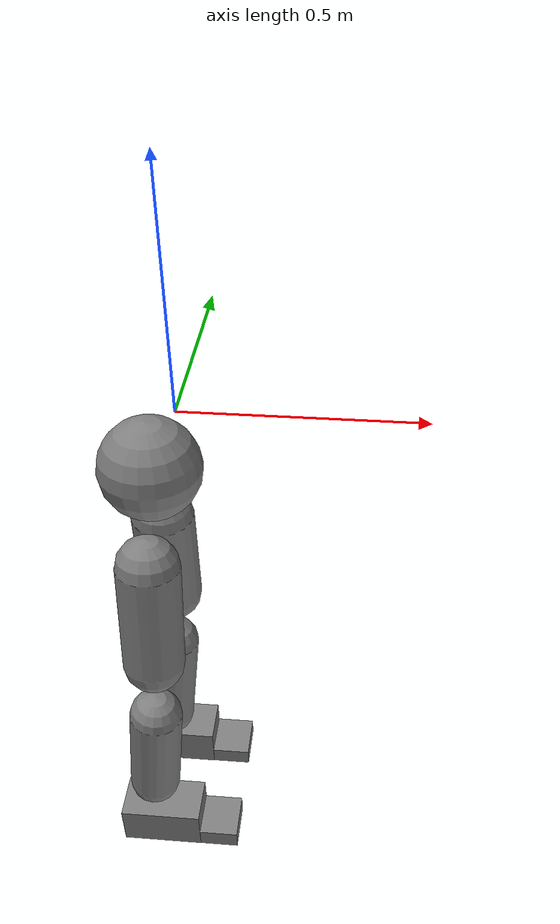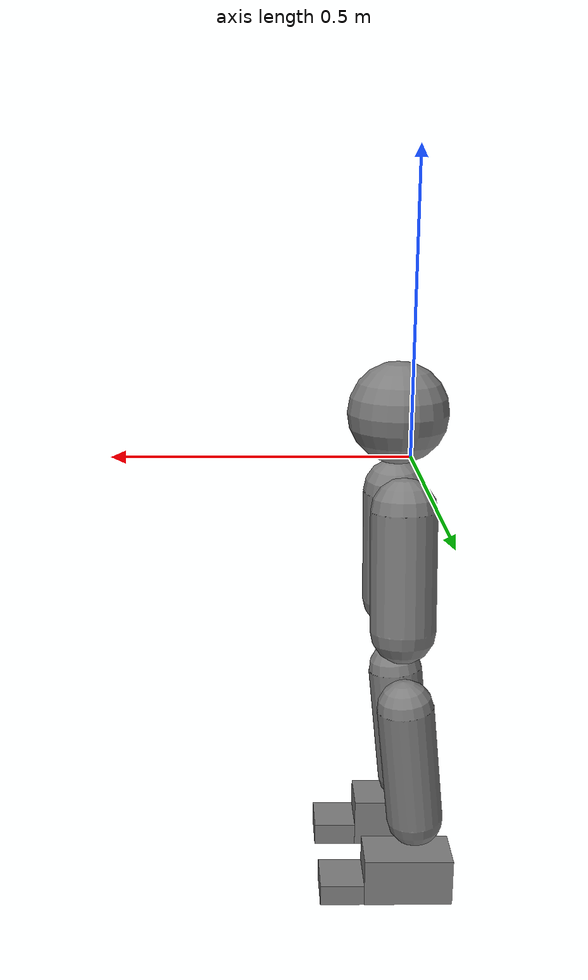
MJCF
<mujoco model="humanoid">
  <compiler coordinate="local"/>
  <statistic extent="2" center="0 0 1"/>
  <option timestep="0.00555"/>
  <default>
    <motor ctrlrange="-1 1" ctrllimited="true"/>
    <geom type="capsule" condim="1" friction="1.0 0.05 0.05" solimp=".9 .99 .003" solref=".015 1"/>
    <joint type="hinge" damping="0.1" stiffness="5" armature=".007" limited="true" solimplimit="0 .99 .01"/>
    <site size=".04" group="3"/>
    <default class="force-torque">
      <site type="box" size=".01 .01 .02" rgba="1 0 0 1"/>
    </default>
    <default class="touch">
      <site type="capsule" rgba="0 0 1 .3"/>
    </default>
  </default>
  <asset>
    <texture type="skybox" builtin="gradient" rgb1=".4 .5 .6" rgb2="0 0 0" width="100" height="100"/>
    <texture builtin="flat" height="1278" mark="cross" markrgb="1 1 1" name="texgeom" random="0.01" rgb1="0.8 0.6 0.4" rgb2="0.8 0.6 0.4" type="cube" width="127"/>
    <texture builtin="checker" height="100" name="texplane" rgb1="0 0 0" rgb2="0.8 0.8 0.8" type="2d" width="100"/>
    <material name="MatPlane" reflectance="0.5" shininess="1" specular="1" texrepeat="60 60" texture="texplane"/>
    <material name="geom" texture="texgeom" texuniform="true"/>
  </asset>
  <worldbody>
    <light cutoff="100" diffuse="1 1 1" dir="-0 0 -1.3" directional="true" exponent="1" pos="0 0 1.3" specular=".1 .1 .1"/>
    <body name="Pelvis" pos="-0.0018 -0.2233 0.0282">
      <freejoint name="Pelvis"/>
      <geom type="sphere" contype="1" conaffinity="1" density="4629.6296296296305" size="0.0942" pos="0.0000 0.0000 0.0000"/>
      <body name="L_Hip" pos="-0.0068 0.0695 -0.0914">
        <joint name="L_Hip_x" type="hinge" pos="0 0 0" axis="1 0 0" stiffness="800" damping="80" armature="0.02" range="-180.0000 180.0000"/>
        <joint name="L_Hip_y" type="hinge" pos="0 0 0" axis="0 1 0" stiffness="800" damping="80" armature="0.02" range="-180.0000 180.0000"/>
        <joint name="L_Hip_z" type="hinge" pos="0 0 0" axis="0 0 1" stiffness="800" damping="80" armature="0.02" range="-180.0000 180.0000"/>
        <geom type="capsule" contype="1" conaffinity="1" density="2040.816327" fromto="-0.0009 0.0069 -0.0750 -0.0036 0.0274 -0.3002" size="0.0615"/>
        <body name="L_Knee" pos="-0.0045 0.0343 -0.3752">
          <joint name="L_Knee_x" type="hinge" pos="0 0 0" axis="1 0 0" stiffness="800" damping="80" armature="0.02" range="-180.0000 180.0000"/>
          <joint name="L_Knee_y" type="hinge" pos="0 0 0" axis="0 1 0" stiffness="800" damping="80" armature="0.02" range="-180.0000 180.0000"/>
          <joint name="L_Knee_z" type="hinge" pos="0 0 0" axis="0 0 1" stiffness="800" damping="80" armature="0.02" range="-180.0000 180.0000"/>
          <geom type="capsule" contype="1" conaffinity="1" density="1234.567901" fromto="-0.0087 -0.0027 -0.0796 -0.0350 -0.0109 -0.3184" size="0.0541"/>
          <body name="L_Ankle" pos="-0.0437 -0.0136 -0.398">
            <joint name="L_Ankle_x" type="hinge" pos="0 0 0" axis="1 0 0" stiffness="800" damping="80" armature="0.02" range="-180.0000 180.0000"/>
            <joint name="L_Ankle_y" type="hinge" pos="0 0 0" axis="0 1 0" stiffness="800" damping="80" armature="0.02" range="-180.0000 180.0000"/>
            <joint name="L_Ankle_z" type="hinge" pos="0 0 0" axis="0 0 1" stiffness="800" damping="80" armature="0.02" range="-180.0000 180.0000"/>
            <geom type="box" pos="0.0242 0.0233 -0.0239" size="0.085 0.0483 0.0464" quat="1.0000 0.0000 0.0000 0.0000" density="1000"/>
            <body name="L_Toe" pos="0.1193 0.0264 -0.0558">
              <joint name="L_Toe_x" type="hinge" pos="0 0 0" axis="1 0 0" stiffness="500" damping="50" armature="0.02" range="-180.0000 180.0000"/>
              <joint name="L_Toe_y" type="hinge" pos="0 0 0" axis="0 1 0" stiffness="500" damping="50" armature="0.02" range="-180.0000 180.0000"/>
              <joint name="L_Toe_z" type="hinge" pos="0 0 0" axis="0 0 1" stiffness="500" damping="50" armature="0.02" range="-180.0000 180.0000"/>
              <geom type="box" pos="0.0248 -0.0030 0.0055" size="0.0496 0.0478 0.02" quat="1.0000 0.0000 0.0000 0.0000" density="1000"/>
            </body>
          </body>
        </body>
      </body>
      <body name="R_Hip" pos="-0.0043 -0.0677 -0.0905">
        <joint name="R_Hip_x" type="hinge" pos="0 0 0" axis="1 0 0" stiffness="800" damping="80" armature="0.02" range="-180.0000 180.0000"/>
        <joint name="R_Hip_y" type="hinge" pos="0 0 0" axis="0 1 0" stiffness="800" damping="80" armature="0.02" range="-180.0000 180.0000"/>
        <joint name="R_Hip_z" type="hinge" pos="0 0 0" axis="0 0 1" stiffness="800" damping="80" armature="0.02" range="-180.0000 180.0000"/>
        <geom type="capsule" contype="1" conaffinity="1" density="2040.816327" fromto="-0.0018 -0.0077 -0.0765 -0.0071 -0.0306 -0.3061" size="0.0606"/>
        <body name="R_Knee" pos="-0.0089 -0.0383 -0.3826">
          <joint name="R_Knee_x" type="hinge" pos="0 0 0" axis="1 0 0" stiffness="800" damping="80" armature="0.02" range="-180.0000 180.0000"/>
          <joint name="R_Knee_y" type="hinge" pos="0 0 0" axis="0 1 0" stiffness="800" damping="80" armature="0.02" range="-180.0000 180.0000"/>
          <joint name="R_Knee_z" type="hinge" pos="0 0 0" axis="0 0 1" stiffness="800" damping="80" armature="0.02" range="-180.0000 180.0000"/>
          <geom type="capsule" contype="1" conaffinity="1" density="1234.567901" fromto="-0.0085 0.0032 -0.0797 -0.0338 0.0126 -0.3187" size="0.0541"/>
          <body name="R_Ankle" pos="-0.0423 0.0158 -0.3984">
            <joint name="R_Ankle_x" type="hinge" pos="0 0 0" axis="1 0 0" stiffness="800" damping="80" armature="0.02" range="-180.0000 180.0000"/>
            <joint name="R_Ankle_y" type="hinge" pos="0 0 0" axis="0 1 0" stiffness="800" damping="80" armature="0.02" range="-180.0000 180.0000"/>
            <joint name="R_Ankle_z" type="hinge" pos="0 0 0" axis="0 0 1" stiffness="800" damping="80" armature="0.02" range="-180.0000 180.0000"/>
            <geom type="box" pos="0.0256 -0.0212 -0.0174" size="0.0865 0.0483 0.0478" quat="1.0000 0.0000 0.0000 0.0000" density="1000"/>
            <body name="R_Toe" pos="0.1233 -0.0254 -0.0481">
              <joint name="R_Toe_x" type="hinge" pos="0 0 0" axis="1 0 0" stiffness="500" damping="50" armature="0.02" range="-180.0000 180.0000"/>
              <joint name="R_Toe_y" type="hinge" pos="0 0 0" axis="0 1 0" stiffness="500" damping="50" armature="0.02" range="-180.0000 180.0000"/>
              <joint name="R_Toe_z" type="hinge" pos="0 0 0" axis="0 0 1" stiffness="500" damping="50" armature="0.02" range="-180.0000 180.0000"/>
              <geom type="box" pos="0.0227 0.0042 0.0045" size="0.0493 0.0479 0.0216" quat="1.0000 0.0000 0.0000 0.0000" density="1000"/>
            </body>
          </body>
        </body>
      </body>
    </body>
  </worldbody>
  <actuator>
    <motor name="L_Hip_x" joint="L_Hip_x" gear="500"/>
    <motor name="L_Hip_y" joint="L_Hip_y" gear="500"/>
    <motor name="L_Hip_z" joint="L_Hip_z" gear="500"/>
    <motor name="L_Knee_x" joint="L_Knee_x" gear="500"/>
    <motor name="L_Knee_y" joint="L_Knee_y" gear="500"/>
    <motor name="L_Knee_z" joint="L_Knee_z" gear="500"/>
    <motor name="L_Ankle_x" joint="L_Ankle_x" gear="500"/>
    <motor name="L_Ankle_y" joint="L_Ankle_y" gear="500"/>
    <motor name="L_Ankle_z" joint="L_Ankle_z" gear="500"/>
    <motor name="L_Toe_x" joint="L_Toe_x" gear="500"/>
    <motor name="L_Toe_y" joint="L_Toe_y" gear="500"/>
    <motor name="L_Toe_z" joint="L_Toe_z" gear="500"/>
    <motor name="R_Hip_x" joint="R_Hip_x" gear="500"/>
    <motor name="R_Hip_y" joint="R_Hip_y" gear="500"/>
    <motor name="R_Hip_z" joint="R_Hip_z" gear="500"/>
    <motor name="R_Knee_x" joint="R_Knee_x" gear="500"/>
    <motor name="R_Knee_y" joint="R_Knee_y" gear="500"/>
    <motor name="R_Knee_z" joint="R_Knee_z" gear="500"/>
    <motor name="R_Ankle_x" joint="R_Ankle_x" gear="500"/>
    <motor name="R_Ankle_y" joint="R_Ankle_y" gear="500"/>
    <motor name="R_Ankle_z" joint="R_Ankle_z" gear="500"/>
    <motor name="R_Toe_x" joint="R_Toe_x" gear="500"/>
    <motor name="R_Toe_y" joint="R_Toe_y" gear="500"/>
    <motor name="R_Toe_z" joint="R_Toe_z" gear="500"/>
  </actuator>
  <contact/>
  <size njmax="700" nconmax="700"/>
</mujoco>
